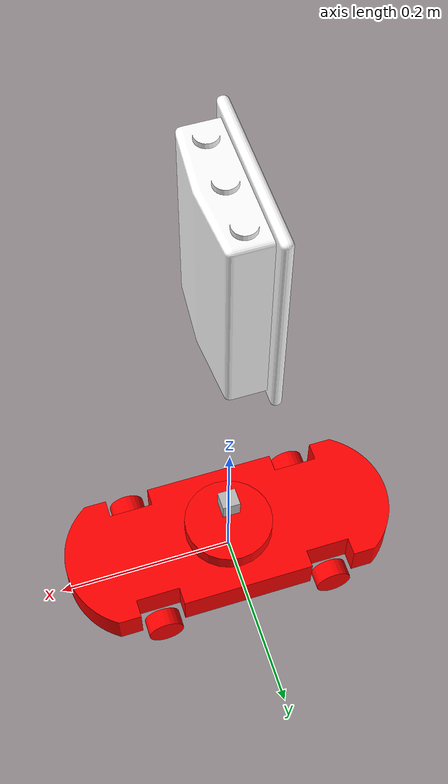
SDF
<?xml version='1.0'?>
<sdf version='1.11'>
	<model name='robotmodel'>

<plugin filename="gz-sim-pose-publisher-system" name="gz::sim::systems::PosePublisher">
    <publish_model_pose>true</publish_model_pose>
    <publish_nested_model_pose>true</publish_nested_model_pose>
    <publish_link_pose>false</publish_link_pose>
    <publish_visual_pose>false</publish_visual_pose>
    <publish_collision_pose>false</publish_collision_pose>
    <publish_sensor_pose>false</publish_sensor_pose>

    <use_pose_vector_msg>false</use_pose_vector_msg>
    <update_frequency>50</update_frequency>
  </plugin>

	<!-- TODO The name should determine the advertised service name. Need to update plugin -->
	<include>
		<name>rfid_scanner</name>
		<uri>model://rfid-scanner</uri>
		<pose>0 0 0.5 0 0 0</pose>
	</include>

    <link name='robot_base'>
      <pose>0 0 0 0 0 0</pose>
      <visual name='robot-base-v'>
        <!-- mesh -->
        <geometry>
          <mesh>
			  <uri>model://robot-rgbd/meshes/robot_base.stl</uri>
            <scale>0.001 0.001 0.001</scale>
          </mesh>
        </geometry>
        <material>
          <diffuse>1 0 0 1</diffuse>
          <ambient>1 0 0 1</ambient>
          <!-- specular -->
        </material>
      </visual>
      <collision name='robot-base-c'>
        <geometry>
          <mesh>
			  <uri>model://robot-rgbd/meshes/robot_base.stl</uri>
            <scale>0.001 0.001 0.001</scale>
          </mesh>
        </geometry>
      </collision>
      <inertial auto='true'>
        <mass>1000</mass>
      </inertial>
    </link>

		<link name='wheel-frontleft'>
      <pose degrees='true'>0.1 0.075 0 90 0 0</pose>
      <visual name='robot-frontleft-v'>
        <!-- mesh -->
        <geometry>
					<cylinder>
						<radius>0.02</radius>
						<length>0.02</length>
					</cylinder>
        </geometry>
        <material>
          <diffuse>1 0 0 1</diffuse>
          <ambient>1 0 0 1</ambient>
          <!-- specular -->
        </material>
      </visual>
      <collision name='robot-frontleft-c'>
        <geometry>
					<!-- NOTE Different geometries for collision and visual -->
					<sphere>
						<radius>0.02</radius>
					</sphere>
        </geometry>
      </collision>
      <inertial auto='true'>
        <mass>1</mass>
      </inertial>
	</link>

	<link name='wheel-backleft'>
      <pose degrees='true'>-0.1 0.075 0 -90 0 0</pose>
      <visual name='robot-backleft-v'>
        <!-- mesh -->
        <geometry>
					<cylinder>
						<radius>0.02</radius>
						<length>0.02</length>
					</cylinder>
        </geometry>
        <material>
          <diffuse>1 0 0 1</diffuse>
          <ambient>1 0 0 1</ambient>
          <!-- specular -->
        </material>
      </visual>
      <collision name='robot-backleft-c'>
        <geometry>
					<cylinder>
						<radius>0.02</radius>
						<length>0.02</length>
					</cylinder>
        </geometry>
      </collision>
      <inertial auto='true'>
        <mass>1</mass>
      </inertial>
	</link>

	<link name='wheel-frontright'>
      <pose degrees='true'>0.1 -0.075 0 90 0 0</pose>
      <visual name='robot-frontright-v'>
        <!-- mesh -->
        <geometry>
			<cylinder>
				<radius>0.02</radius>
				<length>0.02</length>
			</cylinder>
        </geometry>
        <material>
          <diffuse>1 0 0 1</diffuse>
          <ambient>1 0 0 1</ambient>
          <!-- specular -->
        </material>
      </visual>
      <collision name='robot-frontright-c'>
        <geometry>
					<!-- NOTE Different geometries for collision and visual -->
					<sphere>
						<radius>0.02</radius>
					</sphere>
        </geometry>
      </collision>
      <inertial auto='true'>
        <mass>1</mass>
      </inertial>
	</link>

	<link name='wheel-backright'>
      <pose degrees='true'>-0.1 -0.075 0 -90 0 0</pose>
      <visual name='robot-backright-v'>
        <!-- mesh -->
        <geometry>
			<cylinder>
				<radius>0.02</radius>
				<length>0.02</length>
			</cylinder>
        </geometry>
        <material>
          <diffuse>1 0 0 1</diffuse>
          <ambient>1 0 0 1</ambient>
          <!-- specular -->
        </material>
      </visual>
      <collision name='robot-backright-c'>
        <geometry>
			<cylinder>
				<radius>0.02</radius>
				<length>0.02</length>
			</cylinder>
        </geometry>
      </collision>
      <inertial auto='true'>
        <mass>1</mass>
      </inertial>
	</link>

	<joint name="scanner_joint" type="fixed">
		<pose>0 0 0 0 0 0</pose>
		<parent>robot_base</parent>
		<child>rfid_scanner::rfid-scanner-link</child>
	</joint>

    <joint name='frontleft' type='ball'>
      <pose>0 0 0 0 0 0</pose>
      <parent>robot_base</parent>
      <child>wheel-frontleft</child>
      <axis>
        <xyz>0 0 1</xyz>
      </axis>
    </joint>

    <joint name='frontright' type='ball'>
      <pose>0 0 0 0 0 0</pose>
      <parent>robot_base</parent>
      <child>wheel-frontright</child>
      <axis>
        <xyz>0 0 1</xyz>
      </axis>
    </joint>

    <joint name='backleft' type='revolute'>
      <pose>0 0 0 0 0 0</pose>
      <parent>robot_base</parent>
      <child>wheel-backleft</child>
      <axis>
        <xyz>0 0 1</xyz>
      </axis>
    </joint>

    <joint name='backright' type='revolute'>
      <pose>0 0 0 0 0 0</pose>
      <parent>robot_base</parent>
      <child>wheel-backright</child>
      <axis>
        <xyz>0 0 1</xyz>
      </axis>
    </joint>

	<link name='robot_lidar'>
		<pose>0 0 0.05 0 0 0</pose>
      <visual name='robot-lidar-v'>
        <!-- mesh -->
        <geometry>
			<cylinder>
				<radius>0.05 </radius>
				<length>0.02 </length>
			</cylinder>
        </geometry>
        <material>
          <diffuse>1 0 0 1</diffuse>
          <ambient>1 0 0 1</ambient>
          <!-- specular -->
        </material>
      </visual>
      <collision name='robot-base-c'>
        <geometry>
			<cylinder>
				<radius>0.05 </radius>
				<length>0.02 </length>
			</cylinder>
        </geometry>
      </collision>

		<sensor name='robot_lidar' type='gpu_lidar'>
			<topic>lidar</topic>
			<update_rate>5</update_rate>
			<always_on>true</always_on>
			<visualize>true</visualize>
			<ray>
				<scan>
					<horizontal>
						<samples>360</samples>
						<resolution>1.00</resolution>
						<min_angle>0.000</min_angle>
						<max_angle>6.280</max_angle>
					</horizontal>
				</scan>
				<range>
					<min>0.12</min>
					<max>10</max>
					<resolution>0.01500</resolution>
				</range>
        <noise>
          <type>gaussian</type>
          <mean>0.0</mean>
          <stddev>0.01</stddev>
        </noise>
			</ray>
		</sensor>
	</link>

    <joint name='lidarjoint' type='fixed'>
      <pose>0 0 0 0 0 0</pose>
      <parent>robot_base</parent>
      <child>robot_lidar</child>
      <axis>
        <xyz>1 0 0</xyz>
      </axis>
    </joint>

    <plugin filename="gz-sim-diff-drive-system" name="gz::sim::systems::DiffDrive">
        <left_joint>backleft</left_joint>
        <right_joint>backright</right_joint>
        <wheel_separation>0.15</wheel_separation>
        <wheel_radius>0.02</wheel_radius>

		<!-- Only change these to the frames if we want to use the wheel odom as a sole source -->
		<frame_id>odom</frame_id>
		<child_frame_id>base_link</child_frame_id>
		<tf_topic>/tf</tf_topic>

        <max_linear_acceleration>1</max_linear_acceleration>
        <min_linear_acceleration>-1</min_linear_acceleration>
        <max_angular_acceleration>2</max_angular_acceleration>
        <min_angular_acceleration>-2</min_angular_acceleration>
        <max_linear_velocity>0.5</max_linear_velocity>
        <min_linear_velocity>-0.5</min_linear_velocity>
        <max_angular_velocity>1</max_angular_velocity>
        <min_angular_velocity>-1</min_angular_velocity>
      </plugin>

	<link name="imu">
		<pose>0 0 0.1 0 0 0 </pose>
		<visual name="imu-v">
			<geometry>
				<box><size>0.02 0.02 0.02</size></box>
			</geometry>
		</visual>
		<collision name="imu-c">
			<geometry>
				<box><size>0.02 0.02 0.02</size></box>
			</geometry>
		</collision>

		<sensor name="imu-sensor" type="imu">
			<topic>imu</topic>
			<update_rate>100</update_rate>
			<always_on>true</always_on>
			<visualize>true</visualize>
			<imu>
        <angular_velocity>
          <x>
            <noise type="gaussian">
              <mean>0.0</mean>
              <stddev>2e-4</stddev>
              <bias_mean>0.0000075</bias_mean>
              <bias_stddev>0.0000008</bias_stddev>
            </noise>
          </x>
          <y>
            <noise type="gaussian">
              <mean>0.0</mean>
              <stddev>2e-4</stddev>
              <bias_mean>0.0000075</bias_mean>
              <bias_stddev>0.0000008</bias_stddev>
            </noise>
          </y>
          <z>
            <noise type="gaussian">
              <mean>0.0</mean>
              <stddev>2e-4</stddev>
              <bias_mean>0.0000075</bias_mean>
              <bias_stddev>0.0000008</bias_stddev>
            </noise>
          </z>
        </angular_velocity>
        <linear_acceleration>
          <x>
            <noise type="gaussian">
              <mean>0.0</mean>
              <stddev>1.7e-2</stddev>
              <bias_mean>0.1</bias_mean>
              <bias_stddev>0.001</bias_stddev>
            </noise>
          </x>
          <y>
            <noise type="gaussian">
              <mean>0.0</mean>
              <stddev>1.7e-2</stddev>
              <bias_mean>0.1</bias_mean>
              <bias_stddev>0.001</bias_stddev>
            </noise>
          </y>
          <z>
            <noise type="gaussian">
              <mean>0.0</mean>
              <stddev>1.7e-2</stddev>
              <bias_mean>0.1</bias_mean>
              <bias_stddev>0.001</bias_stddev>
            </noise>
          </z>
        </linear_acceleration>
      </imu>
		</sensor>
	</link>

    <joint name='imujoint' type='fixed'>
      <pose>0 0 0 0 0 0</pose>
      <parent>robot_base</parent>
      <child>imu</child>
      <axis>
        <xyz>1 0 0</xyz>
      </axis>
  </joint>

  </model>
</sdf>

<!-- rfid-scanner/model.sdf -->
<sdf version="1.9">
	<model name="rfid-scanner">
		<static>false</static>
		<link name="rfid-scanner-link">
			<collision name="rfid-scanner-collision">
				<geometry>
					<mesh>
						<uri>model://rfid-scanner/meshes/model1.obj</uri>
					  <scale>1 1 1</scale>
					</mesh>
				</geometry>
			</collision>

			<visual name="rfid-scanner-visual">
				<pose degrees="true">0 0 0 90 0 180</pose>
				<geometry>
					<mesh>
						<uri>model://rfid-scanner/meshes/model1.obj</uri>
					  <scale>1 1 1</scale>
					</mesh>
				</geometry>
				<material>
					<ambient>1 1 1 1</ambient>
					<diffuse>1 1 1 1</diffuse>
					<specular>0.1 0.1 0.1 1</specular>
					<emissive>0 0 0 1</emissive>
				</material>
			</visual>

			<inertial>
				<mass>2</mass>
				<inertia>
					<ixx>1</ixx>
					<iyy>1</iyy>
					<izz>1</izz>
				</inertia>
			</inertial>

		</link>

		<plugin filename="librfidScanner" name="RFIDScanner"></plugin>

	</model>
</sdf>
